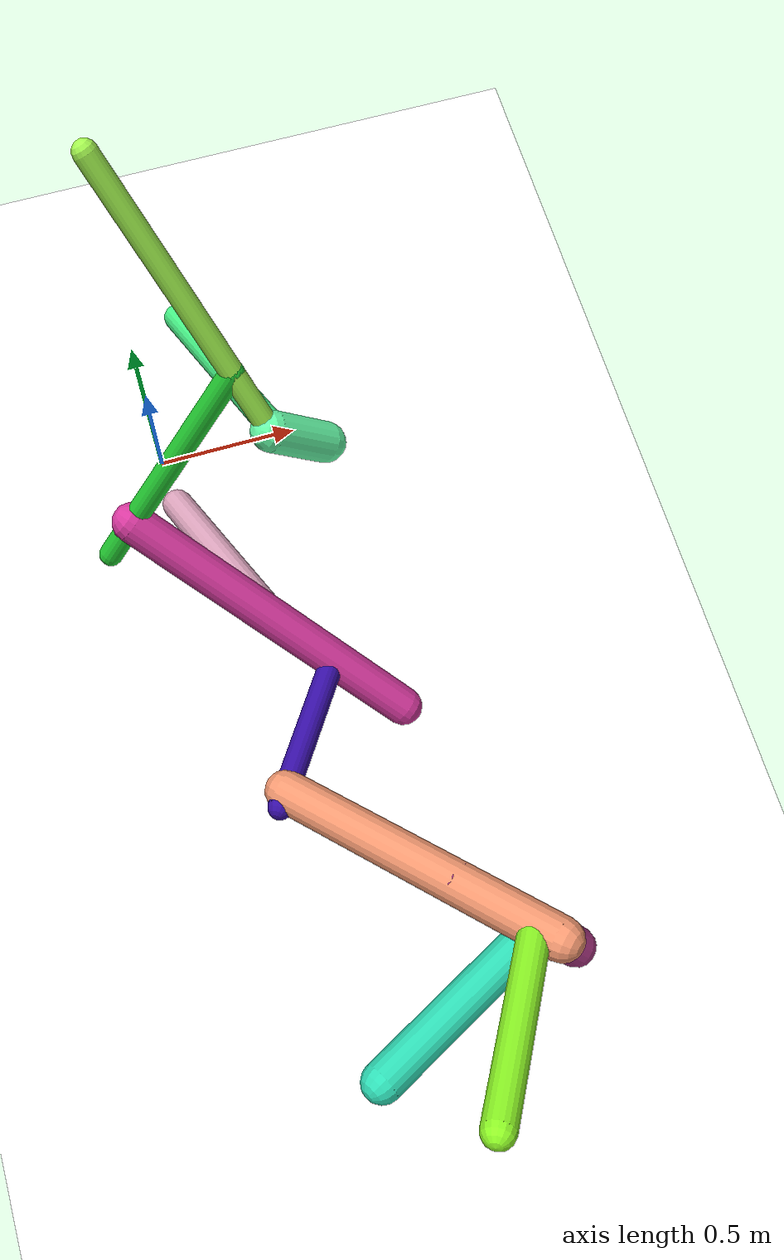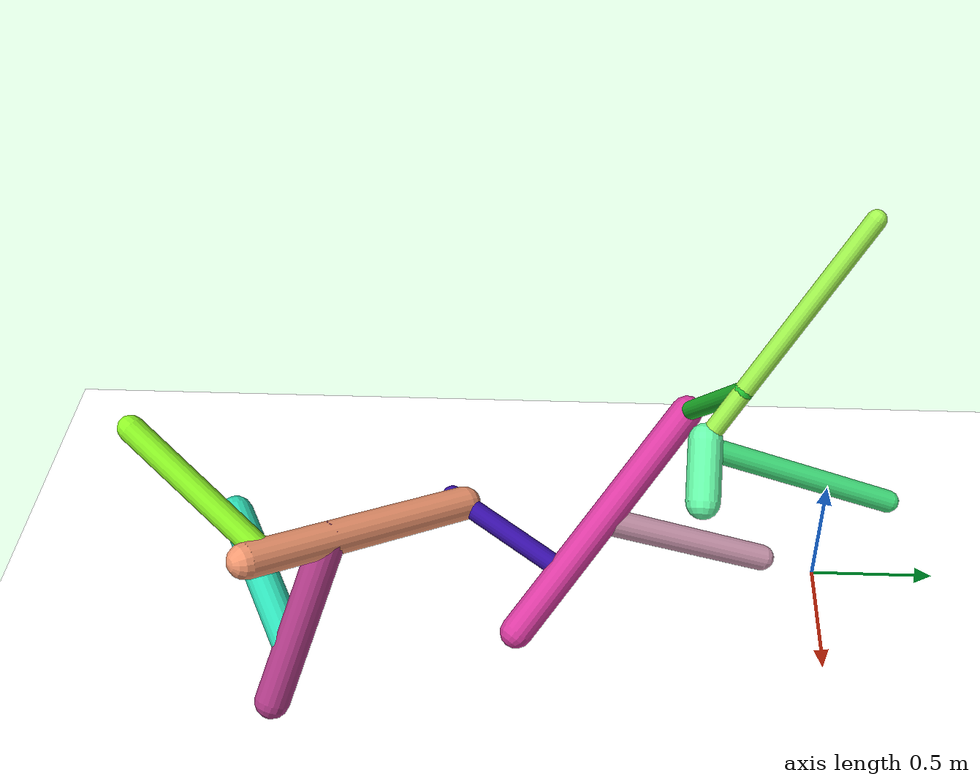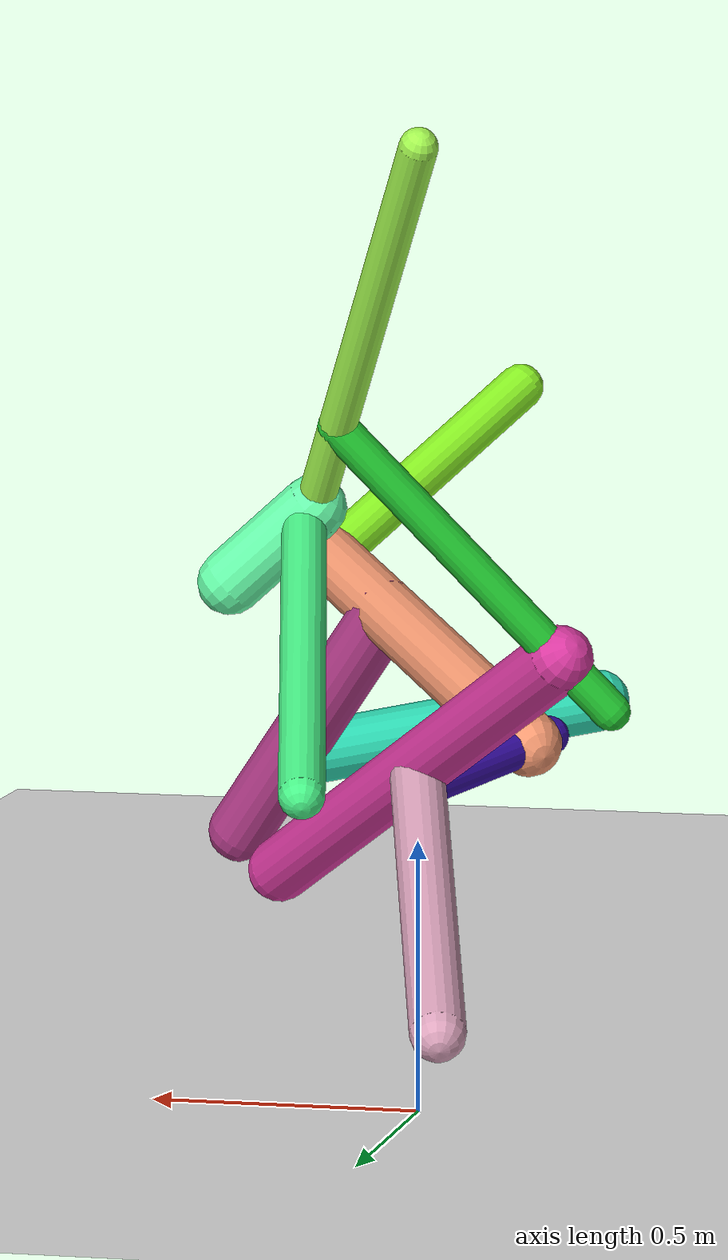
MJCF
<mujoco model="morphology">
  <option timestep="0.01"/>
  <default>
    <default class="/"/>
    <default class="0/"/>
    <default class="0/1/"/>
    <default class="0/1/2/"/>
    <default class="0/1/2/3/"/>
    <default class="0/1/2/4/"/>
    <default class="0/1/2/4/5/"/>
    <default class="0/1/2/4/5/6/"/>
    <default class="0/1/2/4/5/7/"/>
    <default class="0/1/2/4/5/7/8/"/>
    <default class="0/9/"/>
    <default class="0/9/10/"/>
  </default>
  <asset>
    <texture name="texplane" type="2d" builtin="checker" rgb1="0.10000000000000001 0.20000000000000001 0.29999999999999999" rgb2="0.20000000000000001 0.29999999999999999 0.40000000000000002" width="300" height="300"/>
    <material name="MatPlane" class="/" texture="texplane" texrepeat="20 20" specular="1" shininess="1" reflectance="0.5"/>
  </asset>
  <worldbody>
    <light name="//unnamed_light_0" class="/" directional="true" pos="0 0 1.5" dir="0 0 -1.3" cutoff="100" exponent="1" diffuse="1 1 1" specular="0.10000000000000001 0.10000000000000001 0.10000000000000001"/>
    <geom name="ground" class="/" type="plane" size="15 15 0.5" material="MatPlane" rgba="1 1 1 1"/>
    <site name="body" class="/" size="9.9999999999999995e-07 9.9999999999999995e-07 9.9999999999999995e-07" pos="0 0 1.762297010421753"/>
    <body pos="0 0 1.762297010421753" name="0/">
      <freejoint name="0/"/>
      <geom name="0/geom" class="0/" type="capsule" contype="1" conaffinity="1" condim="3" size="0.03612605195690597" rgba="0.6316499493224299 0.9571102626573601 0.3036467602243802 1" friction="0.59999999999999998 0.10000000000000001 0.10000000000000001" fromto="0 0 0 0.32182514502101278 -0.53222903433934166 -0.72738272492261191"/>
      <site name="0/end0" class="0/" size="0.0050000000000000001" pos="0.32182514502101278 -0.53222903433934166 -0.72738272492261191"/>
      <site name="0/attach1" class="0/" size="9.9999999999999995e-07 9.9999999999999995e-07 9.9999999999999995e-07" pos="0.24644208394021086 -0.40756179057267078 -0.55700344527253598"/>
      <body pos="0.24644208394021086 -0.40756179057267078 -0.55700344527253598" name="0/1/">
        <joint name="0/1/joint/" class="0/" type="hinge" axis="0 0 1" limited="true" range="-47.219992713836206 47.219992713836206"/>
        <geom name="0/1/geom" class="0/1/" type="capsule" contype="1" conaffinity="1" condim="3" size="0.037405347295419354" rgba="0.13583781119253169 0.77921989547081216 0.19274770875094793 1" friction="0.59999999999999998 0.10000000000000001 0.10000000000000001" fromto="0 0 0 -0.48268864288241992 -0.19994517445181059 -0.548637623315409"/>
        <site name="0/1/end1" class="0/1/" size="0.0050000000000000001" pos="-0.48268864288241992 -0.19994517445181059 -0.548637623315409"/>
        <site name="0/1/attach2" class="0/1/" size="9.9999999999999995e-07 9.9999999999999995e-07 9.9999999999999995e-07" pos="-0.39225212071514037 -0.16248345566437167 -0.44584490317499764"/>
        <body pos="-0.39225212071514037 -0.16248345566437167 -0.44584490317499764" name="0/1/2/">
          <geom name="0/1/2/geom" class="0/1/2/" type="capsule" contype="1" conaffinity="1" condim="3" size="0.063864253669024526" rgba="0.83836239379426158 0.219678456055729 0.61851492010792131 1" friction="0.59999999999999998 0.10000000000000001 0.10000000000000001" fromto="0 0 0 0.69907817957009222 -0.63949500792194147 -0.53655602837505212"/>
          <site name="0/1/2/end2" class="0/1/2/" size="0.0050000000000000001" pos="0.69907817957009222 -0.63949500792194147 -0.53655602837505212"/>
          <site name="0/1/2/attach3" class="0/1/2/" size="9.9999999999999995e-07 9.9999999999999995e-07 9.9999999999999995e-07" pos="0.34775987612177828 -0.31811993455752291 -0.26691243327727554"/>
          <body pos="0.34775987612177828 -0.31811993455752291 -0.26691243327727554" name="0/1/2/3/">
            <joint name="0/1/2/3/joint/" class="0/1/2/" type="hinge" axis="0.76666801411718521 0.4918506966123275 0.41267789905879337" limited="true" range="-38.883046721787146 38.883046721787146"/>
            <geom name="0/1/2/3/geom" class="0/1/2/3/" type="capsule" contype="1" conaffinity="1" condim="3" size="0.053914193182588652" rgba="0.85030420044219612 0.632452210412217 0.72951528312426017 1" friction="0.59999999999999998 0.10000000000000001 0.10000000000000001" fromto="0 0 0 -0.18885771327517653 0.66228510640640215 -0.39253619264767109"/>
            <site name="0/1/2/3/end3" class="0/1/2/3/" size="0.0050000000000000001" pos="-0.18885771327517653 0.66228510640640215 -0.39253619264767109"/>
          </body>
          <site name="0/1/2/attach4" class="0/1/2/" size="9.9999999999999995e-07 9.9999999999999995e-07 9.9999999999999995e-07" pos="0.50853394271157737 -0.46519105763379076 -0.39030963999338009"/>
          <body pos="0.50853394271157737 -0.46519105763379076 -0.39030963999338009" name="0/1/2/4/">
            <joint name="0/1/2/4/joint/" class="0/1/2/" type="hinge" axis="0.76666801411718521 0.4918506966123275 0.41267789905879337" limited="true" range="-45.850786189159706 45.850786189159706"/>
            <geom name="0/1/2/4/geom" class="0/1/2/4/" type="capsule" contype="1" conaffinity="1" condim="3" size="0.040663561897690673" rgba="0.20775276911395668 0.051642347573062075 0.63379664156573901 1" friction="0.59999999999999998 0.10000000000000001 0.10000000000000001" fromto="0 0 0 -0.29808479517067038 -0.45427890618994393 0.09799350481229252"/>
            <site name="0/1/2/4/end4" class="0/1/2/4/" size="0.0050000000000000001" pos="-0.29808479517067038 -0.45427890618994393 0.09799350481229252"/>
            <site name="0/1/2/4/attach5" class="0/1/2/4/" size="9.9999999999999995e-07 9.9999999999999995e-07 9.9999999999999995e-07" pos="-0.26727979732112656 -0.4073323293936939 0.087866555186151538"/>
            <body pos="-0.26727979732112656 -0.4073323293936939 0.087866555186151538" name="0/1/2/4/5/">
              <joint name="0/1/2/4/5/joint/" class="0/1/2/4/" type="hinge" axis="0.84172911260623695 -0.5277608733674457 0.11384446202405984" limited="true" range="-42.918668102881263 42.918668102881263"/>
              <geom name="0/1/2/4/5/geom" class="0/1/2/4/5/" type="capsule" contype="1" conaffinity="1" condim="3" size="0.067304313893548934" rgba="0.94222197485545167 0.58971106692486275 0.43537990641959423 1" friction="0.59999999999999998 0.10000000000000001 0.10000000000000001" fromto="0 0 0 0.61521984517216266 -0.69911754606724008 0.30400529028228052"/>
              <site name="0/1/2/4/5/end5" class="0/1/2/4/5/" size="0.0050000000000000001" pos="0.61521984517216266 -0.69911754606724008 0.30400529028228052"/>
              <site name="0/1/2/4/5/attach6" class="0/1/2/4/5/" size="9.9999999999999995e-07 9.9999999999999995e-07 9.9999999999999995e-07" pos="0.56265978271636896 -0.63938985331871934 0.27803321352058741"/>
              <body pos="0.56265978271636896 -0.63938985331871934 0.27803321352058741" name="0/1/2/4/5/6/">
                <joint name="0/1/2/4/5/6/joint/" class="0/1/2/4/5/" type="hinge" axis="-2.7755575615628914e-17 0.39877149571944137 0.91705032261140373" limited="true" range="-58.936720937641624 58.936720937641624"/>
                <geom name="0/1/2/4/5/6/geom" class="0/1/2/4/5/6/" type="capsule" contype="1" conaffinity="1" condim="3" size="0.049382580918004258" rgba="0.55164070287281641 0.96684646083397763 0.14305381445477972 1" friction="0.59999999999999998 0.10000000000000001 0.10000000000000001" fromto="0 0 0 -0.3051634984010333 -0.49572264116760079 0.31575783189830831"/>
                <site name="0/1/2/4/5/6/end6" class="0/1/2/4/5/6/" size="0.0050000000000000001" pos="-0.3051634984010333 -0.49572264116760079 0.31575783189830831"/>
              </body>
              <site name="0/1/2/4/5/attach7" class="0/1/2/4/5/" size="9.9999999999999995e-07 9.9999999999999995e-07 9.9999999999999995e-07" pos="0.39832862317995266 -0.45264880798502466 0.19683046583725819"/>
              <body pos="0.39832862317995266 -0.45264880798502466 0.19683046583725819" name="0/1/2/4/5/7/">
                <geom name="0/1/2/4/5/7/geom" class="0/1/2/4/5/7/" type="capsule" contype="1" conaffinity="1" condim="3" size="0.066998252688987889" rgba="0.68426542331245321 0.22572616151835845 0.52610850120029184 1" friction="0.59999999999999998 0.10000000000000001 0.10000000000000001" fromto="0 0 0 0.36501012163275215 -0.21424790924684445 -0.50905941478981498"/>
                <site name="0/1/2/4/5/7/end7" class="0/1/2/4/5/7/" size="0.0050000000000000001" pos="0.36501012163275215 -0.21424790924684445 -0.50905941478981498"/>
                <site name="0/1/2/4/5/7/attach8" class="0/1/2/4/5/7/" size="9.9999999999999995e-07 9.9999999999999995e-07 9.9999999999999995e-07" pos="0.24210120936642443 -0.14210476602913674 -0.33764515736902756"/>
                <body pos="0.24210120936642443 -0.14210476602913674 -0.33764515736902756" name="0/1/2/4/5/7/8/">
                  <joint name="0/1/2/4/5/7/8/joint/" class="0/1/2/4/5/7/" type="hinge" axis="0.83427096936950418 0.21387825708759939 0.50818111024755619" limited="true" range="-59.342291575539001 59.342291575539001"/>
                  <geom name="0/1/2/4/5/7/8/geom" class="0/1/2/4/5/7/8/" type="capsule" contype="1" conaffinity="1" condim="3" size="0.06579872503783836" rgba="0.17874484943203761 0.85873584946176196 0.70707847998237139 1" friction="0.59999999999999998 0.10000000000000001 0.10000000000000001" fromto="0 0 0 -0.60032687363075488 -0.31505902385280693 0.094985126738270975"/>
                  <site name="0/1/2/4/5/7/8/end8" class="0/1/2/4/5/7/8/" size="0.0050000000000000001" pos="-0.60032687363075488 -0.31505902385280693 0.094985126738270975"/>
                </body>
              </body>
            </body>
          </body>
        </body>
      </body>
      <site name="0/attach9" class="0/" size="9.9999999999999995e-07 9.9999999999999995e-07 9.9999999999999995e-07" pos="0.32045355715118551 -0.52996072529399951 -0.72428268958460063"/>
      <body pos="0.32045355715118551 -0.52996072529399951 -0.72428268958460063" name="0/9/">
        <joint name="0/9/joint/" class="0/" type="hinge" axis="0 0 1" limited="true" range="-66.919418831226523 66.919418831226523"/>
        <geom name="0/9/geom" class="0/9/" type="capsule" contype="1" conaffinity="1" condim="3" size="0.06295052023305317" rgba="0.39854161368669205 0.9890310861874716 0.65993333709143409 1" friction="0.59999999999999998 0.10000000000000001 0.10000000000000001" fromto="0 0 0 0.16399967009092742 -0.0042741734192188741 -0.14675095598250265"/>
        <site name="0/9/end9" class="0/9/" size="0.0050000000000000001" pos="0.16399967009092742 -0.0042741734192188741 -0.14675095598250265"/>
        <site name="0/9/attach10" class="0/9/" size="9.9999999999999995e-07 9.9999999999999995e-07 9.9999999999999995e-07" pos="0.018846775487976031 -0.00049118627363110346 -0.016864560267192179"/>
        <body pos="0.018846775487976031 -0.00049118627363110346 -0.016864560267192179" name="0/9/10/">
          <joint name="0/9/10/joint/" class="0/9/" type="hinge" axis="5.5511151231257827e-17 -0.99957612655715766 0.029113007693972293" limited="true" range="-51.699264849868364 51.699264849868364"/>
          <geom name="0/9/10/geom" class="0/9/10/" type="capsule" contype="1" conaffinity="1" condim="3" size="0.042986440881355781" rgba="0.27724919827323136 0.94010623645648372 0.52454855975171932 1" friction="0.59999999999999998 0.10000000000000001 0.10000000000000001" fromto="0 0 0 -0.16912398541850604 0.72923098115439933 -0.41318736180642879"/>
          <site name="0/9/10/end10" class="0/9/10/" size="0.0050000000000000001" pos="-0.16912398541850604 0.72923098115439933 -0.41318736180642879"/>
        </body>
      </body>
      <camera name="0/iso" class="0/" mode="trackcom" pos="-2.2999999999999998 -2.2999999999999998 1" xyaxes="0.45000000000000001 -0.45000000000000001 0 0.29999999999999999 0.14999999999999999 0.93999999999999995"/>
    </body>
  </worldbody>
  <actuator>
    <motor name="0/1/motor" class="0/1/" ctrllimited="true" ctrlrange="-1 1" gear="69" joint="0/1/joint/"/>
    <motor name="0/1/2/3/motor" class="0/1/2/3/" ctrllimited="true" ctrlrange="-1 1" gear="55" joint="0/1/2/3/joint/"/>
    <motor name="0/1/2/4/motor" class="0/1/2/4/" ctrllimited="true" ctrlrange="-1 1" gear="56" joint="0/1/2/4/joint/"/>
    <motor name="0/1/2/4/5/motor" class="0/1/2/4/5/" ctrllimited="true" ctrlrange="-1 1" gear="54" joint="0/1/2/4/5/joint/"/>
    <motor name="0/1/2/4/5/6/motor" class="0/1/2/4/5/6/" ctrllimited="true" ctrlrange="-1 1" gear="52" joint="0/1/2/4/5/6/joint/"/>
    <motor name="0/1/2/4/5/7/8/motor" class="0/1/2/4/5/7/8/" ctrllimited="true" ctrlrange="-1 1" gear="94" joint="0/1/2/4/5/7/8/joint/"/>
    <motor name="0/9/motor" class="0/9/" ctrllimited="true" ctrlrange="-1 1" gear="67" joint="0/9/joint/"/>
    <motor name="0/9/10/motor" class="0/9/10/" ctrllimited="true" ctrlrange="-1 1" gear="72" joint="0/9/10/joint/"/>
  </actuator>
  <sensor>
    <subtreelinvel name="velocity" body="0/"/>
  </sensor>
</mujoco>
